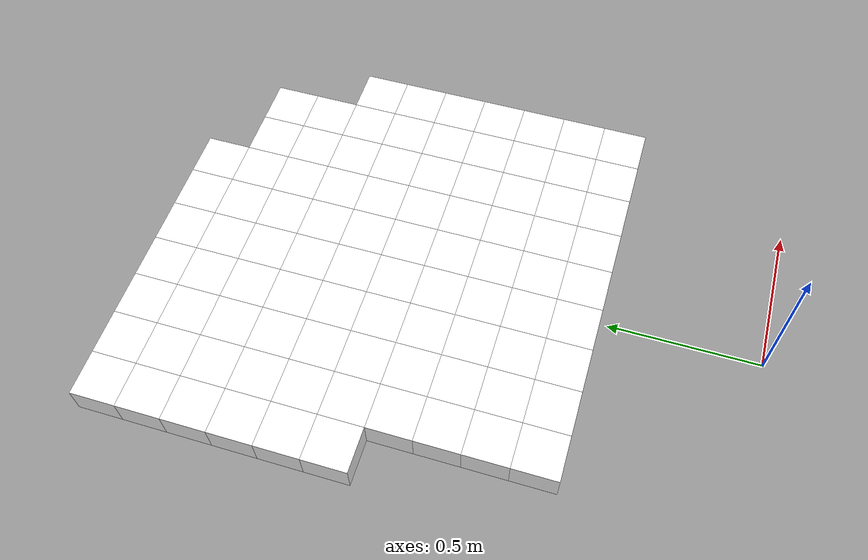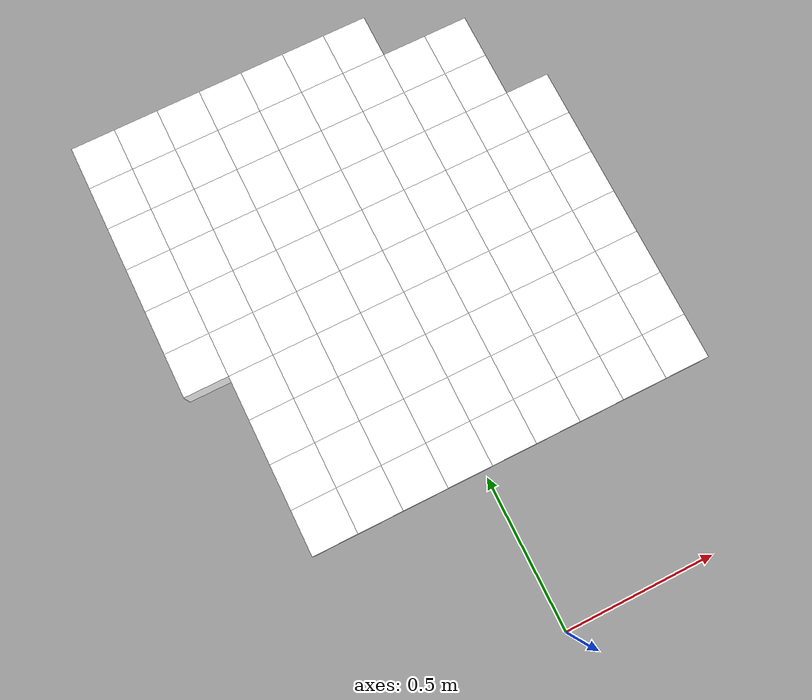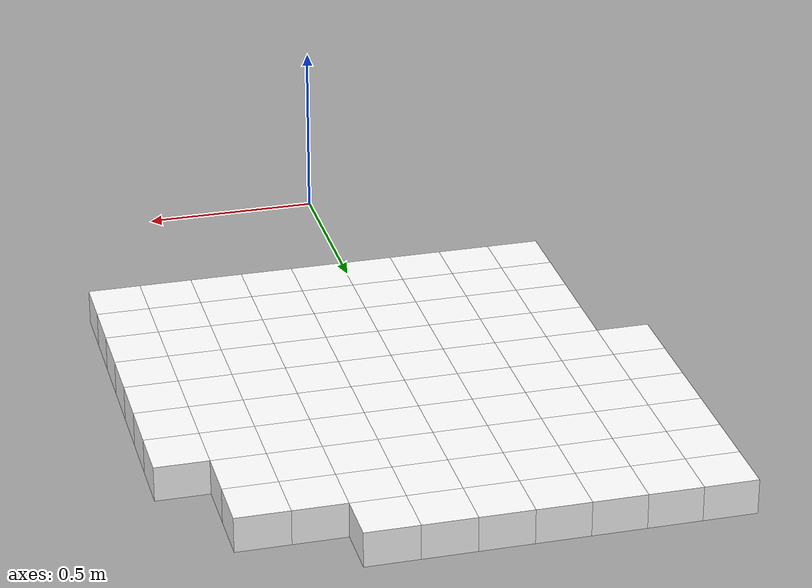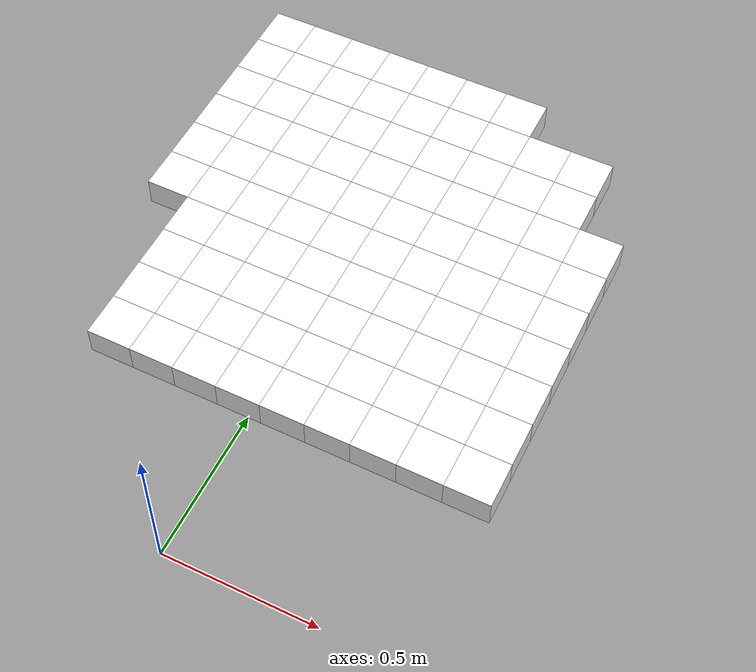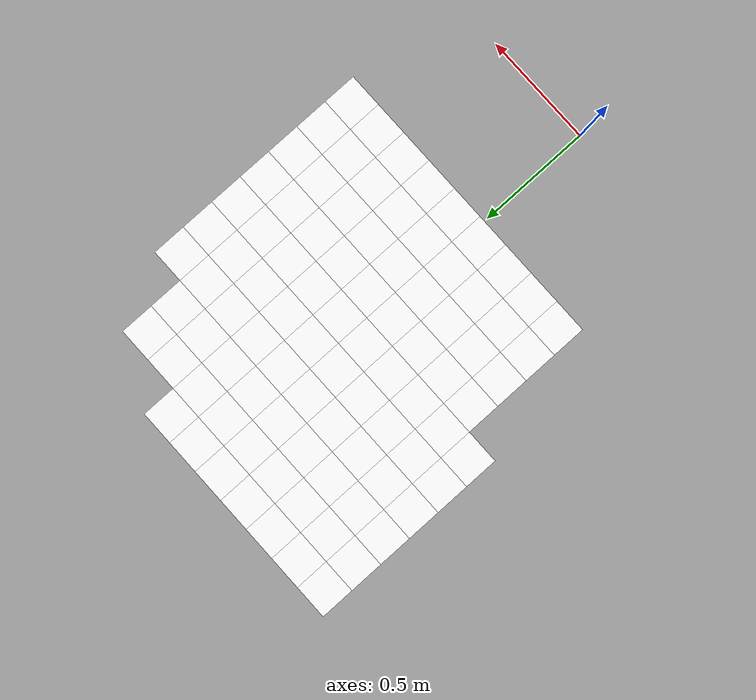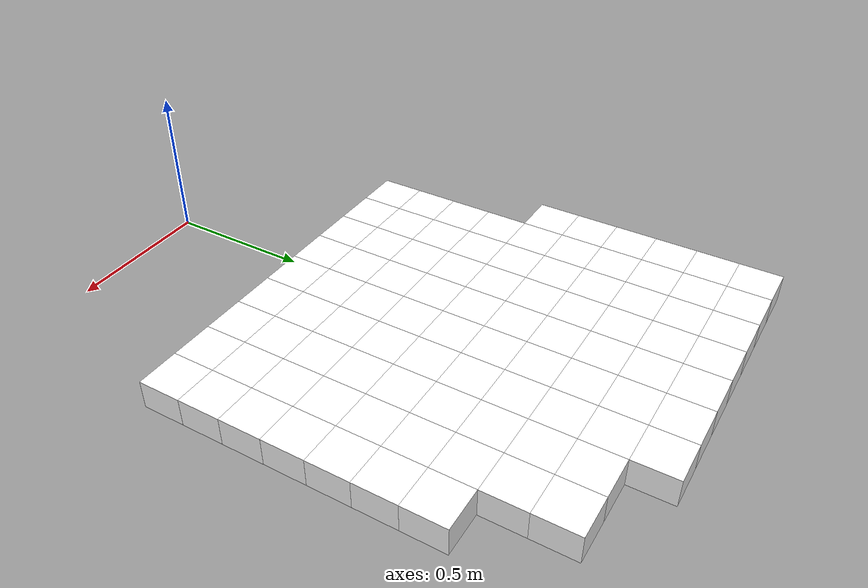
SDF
<sdf version="1.7">
 <world name="default">
  <include><uri>model://sun</uri></include>
  <model name="static_environment">
   <static>true</static>
   <link name="region_10">
    <pose>-0.5000000000000002 0.6 0.0 0.0 0.0 0.0</pose>
    <collision name="region_10_collision">
     <geometry><box><size>0.15 0.15 0.1</size></box></geometry>
     <surface><friction><ode><mu>1.0</mu><mu2>1.0</mu2></ode></friction></surface>
    </collision>
    <visual name="region_10_visual">
     <geometry><box><size>0.15 0.15 0.1</size></box></geometry>
     <material><ambient>1.0 1.0 1.0 1.0</ambient><diffuse>1.0 1.0 1.0 1.0</diffuse></material>
    </visual>
   </link>
   <link name="region_11">
    <pose>-0.3500000000000003 0.6 0.0 0.0 0.0 0.0</pose>
    <collision name="region_11_collision">
     <geometry><box><size>0.15 0.15 0.1</size></box></geometry>
     <surface><friction><ode><mu>1.0</mu><mu2>1.0</mu2></ode></friction></surface>
    </collision>
    <visual name="region_11_visual">
     <geometry><box><size>0.15 0.15 0.1</size></box></geometry>
     <material><ambient>1.0 1.0 1.0 1.0</ambient><diffuse>1.0 1.0 1.0 1.0</diffuse></material>
    </visual>
   </link>
   <link name="region_12">
    <pose>-0.2000000000000004 0.6 0.0 0.0 0.0 0.0</pose>
    <collision name="region_12_collision">
     <geometry><box><size>0.15 0.15 0.1</size></box></geometry>
     <surface><friction><ode><mu>1.0</mu><mu2>1.0</mu2></ode></friction></surface>
    </collision>
    <visual name="region_12_visual">
     <geometry><box><size>0.15 0.15 0.1</size></box></geometry>
     <material><ambient>1.0 1.0 1.0 1.0</ambient><diffuse>1.0 1.0 1.0 1.0</diffuse></material>
    </visual>
   </link>
   <link name="region_13">
    <pose>-0.05000000000000049 0.6 0.0 0.0 0.0 0.0</pose>
    <collision name="region_13_collision">
     <geometry><box><size>0.15 0.15 0.1</size></box></geometry>
     <surface><friction><ode><mu>1.0</mu><mu2>1.0</mu2></ode></friction></surface>
    </collision>
    <visual name="region_13_visual">
     <geometry><box><size>0.15 0.15 0.1</size></box></geometry>
     <material><ambient>1.0 1.0 1.0 1.0</ambient><diffuse>1.0 1.0 1.0 1.0</diffuse></material>
    </visual>
   </link>
   <link name="region_14">
    <pose>0.09999999999999964 0.6 0.0 0.0 0.0 0.0</pose>
    <collision name="region_14_collision">
     <geometry><box><size>0.15 0.15 0.1</size></box></geometry>
     <surface><friction><ode><mu>1.0</mu><mu2>1.0</mu2></ode></friction></surface>
    </collision>
    <visual name="region_14_visual">
     <geometry><box><size>0.15 0.15 0.1</size></box></geometry>
     <material><ambient>1.0 1.0 1.0 1.0</ambient><diffuse>1.0 1.0 1.0 1.0</diffuse></material>
    </visual>
   </link>
   <link name="region_15">
    <pose>0.24999999999999956 0.6 0.0 0.0 0.0 0.0</pose>
    <collision name="region_15_collision">
     <geometry><box><size>0.15 0.15 0.1</size></box></geometry>
     <surface><friction><ode><mu>1.0</mu><mu2>1.0</mu2></ode></friction></surface>
    </collision>
    <visual name="region_15_visual">
     <geometry><box><size>0.15 0.15 0.1</size></box></geometry>
     <material><ambient>1.0 1.0 1.0 1.0</ambient><diffuse>1.0 1.0 1.0 1.0</diffuse></material>
    </visual>
   </link>
   <link name="region_16">
    <pose>0.39999999999999947 0.6 0.0 0.0 0.0 0.0</pose>
    <collision name="region_16_collision">
     <geometry><box><size>0.15 0.15 0.1</size></box></geometry>
     <surface><friction><ode><mu>1.0</mu><mu2>1.0</mu2></ode></friction></surface>
    </collision>
    <visual name="region_16_visual">
     <geometry><box><size>0.15 0.15 0.1</size></box></geometry>
     <material><ambient>1.0 1.0 1.0 1.0</ambient><diffuse>1.0 1.0 1.0 1.0</diffuse></material>
    </visual>
   </link>
   <link name="region_17">
    <pose>0.5499999999999994 0.6 0.0 0.0 0.0 0.0</pose>
    <collision name="region_17_collision">
     <geometry><box><size>0.15 0.15 0.1</size></box></geometry>
     <surface><friction><ode><mu>1.0</mu><mu2>1.0</mu2></ode></friction></surface>
    </collision>
    <visual name="region_17_visual">
     <geometry><box><size>0.15 0.15 0.1</size></box></geometry>
     <material><ambient>1.0 1.0 1.0 1.0</ambient><diffuse>1.0 1.0 1.0 1.0</diffuse></material>
    </visual>
   </link>
   <link name="region_18">
    <pose>0.6999999999999993 0.6 0.0 0.0 0.0 0.0</pose>
    <collision name="region_18_collision">
     <geometry><box><size>0.15 0.15 0.1</size></box></geometry>
     <surface><friction><ode><mu>1.0</mu><mu2>1.0</mu2></ode></friction></surface>
    </collision>
    <visual name="region_18_visual">
     <geometry><box><size>0.15 0.15 0.1</size></box></geometry>
     <material><ambient>1.0 1.0 1.0 1.0</ambient><diffuse>1.0 1.0 1.0 1.0</diffuse></material>
    </visual>
   </link>
   <link name="region_30">
    <pose>-0.5000000000000002 0.75 0.0 0.0 0.0 0.0</pose>
    <collision name="region_30_collision">
     <geometry><box><size>0.15 0.15 0.1</size></box></geometry>
     <surface><friction><ode><mu>1.0</mu><mu2>1.0</mu2></ode></friction></surface>
    </collision>
    <visual name="region_30_visual">
     <geometry><box><size>0.15 0.15 0.1</size></box></geometry>
     <material><ambient>1.0 1.0 1.0 1.0</ambient><diffuse>1.0 1.0 1.0 1.0</diffuse></material>
    </visual>
   </link>
   <link name="region_31">
    <pose>-0.3500000000000003 0.75 0.0 0.0 0.0 0.0</pose>
    <collision name="region_31_collision">
     <geometry><box><size>0.15 0.15 0.1</size></box></geometry>
     <surface><friction><ode><mu>1.0</mu><mu2>1.0</mu2></ode></friction></surface>
    </collision>
    <visual name="region_31_visual">
     <geometry><box><size>0.15 0.15 0.1</size></box></geometry>
     <material><ambient>1.0 1.0 1.0 1.0</ambient><diffuse>1.0 1.0 1.0 1.0</diffuse></material>
    </visual>
   </link>
   <link name="region_32">
    <pose>-0.2000000000000004 0.75 0.0 0.0 0.0 0.0</pose>
    <collision name="region_32_collision">
     <geometry><box><size>0.15 0.15 0.1</size></box></geometry>
     <surface><friction><ode><mu>1.0</mu><mu2>1.0</mu2></ode></friction></surface>
    </collision>
    <visual name="region_32_visual">
     <geometry><box><size>0.15 0.15 0.1</size></box></geometry>
     <material><ambient>1.0 1.0 1.0 1.0</ambient><diffuse>1.0 1.0 1.0 1.0</diffuse></material>
    </visual>
   </link>
   <link name="region_33">
    <pose>-0.05000000000000049 0.75 0.0 0.0 0.0 0.0</pose>
    <collision name="region_33_collision">
     <geometry><box><size>0.15 0.15 0.1</size></box></geometry>
     <surface><friction><ode><mu>1.0</mu><mu2>1.0</mu2></ode></friction></surface>
    </collision>
    <visual name="region_33_visual">
     <geometry><box><size>0.15 0.15 0.1</size></box></geometry>
     <material><ambient>1.0 1.0 1.0 1.0</ambient><diffuse>1.0 1.0 1.0 1.0</diffuse></material>
    </visual>
   </link>
   <link name="region_34">
    <pose>0.09999999999999964 0.75 0.0 0.0 0.0 0.0</pose>
    <collision name="region_34_collision">
     <geometry><box><size>0.15 0.15 0.1</size></box></geometry>
     <surface><friction><ode><mu>1.0</mu><mu2>1.0</mu2></ode></friction></surface>
    </collision>
    <visual name="region_34_visual">
     <geometry><box><size>0.15 0.15 0.1</size></box></geometry>
     <material><ambient>1.0 1.0 1.0 1.0</ambient><diffuse>1.0 1.0 1.0 1.0</diffuse></material>
    </visual>
   </link>
   <link name="region_35">
    <pose>0.24999999999999956 0.75 0.0 0.0 0.0 0.0</pose>
    <collision name="region_35_collision">
     <geometry><box><size>0.15 0.15 0.1</size></box></geometry>
     <surface><friction><ode><mu>1.0</mu><mu2>1.0</mu2></ode></friction></surface>
    </collision>
    <visual name="region_35_visual">
     <geometry><box><size>0.15 0.15 0.1</size></box></geometry>
     <material><ambient>1.0 1.0 1.0 1.0</ambient><diffuse>1.0 1.0 1.0 1.0</diffuse></material>
    </visual>
   </link>
   <link name="region_36">
    <pose>0.39999999999999947 0.75 0.0 0.0 0.0 0.0</pose>
    <collision name="region_36_collision">
     <geometry><box><size>0.15 0.15 0.1</size></box></geometry>
     <surface><friction><ode><mu>1.0</mu><mu2>1.0</mu2></ode></friction></surface>
    </collision>
    <visual name="region_36_visual">
     <geometry><box><size>0.15 0.15 0.1</size></box></geometry>
     <material><ambient>1.0 1.0 1.0 1.0</ambient><diffuse>1.0 1.0 1.0 1.0</diffuse></material>
    </visual>
   </link>
   <link name="region_37">
    <pose>0.5499999999999994 0.75 0.0 0.0 0.0 0.0</pose>
    <collision name="region_37_collision">
     <geometry><box><size>0.15 0.15 0.1</size></box></geometry>
     <surface><friction><ode><mu>1.0</mu><mu2>1.0</mu2></ode></friction></surface>
    </collision>
    <visual name="region_37_visual">
     <geometry><box><size>0.15 0.15 0.1</size></box></geometry>
     <material><ambient>1.0 1.0 1.0 1.0</ambient><diffuse>1.0 1.0 1.0 1.0</diffuse></material>
    </visual>
   </link>
   <link name="region_38">
    <pose>0.6999999999999993 0.75 0.0 0.0 0.0 0.0</pose>
    <collision name="region_38_collision">
     <geometry><box><size>0.15 0.15 0.1</size></box></geometry>
     <surface><friction><ode><mu>1.0</mu><mu2>1.0</mu2></ode></friction></surface>
    </collision>
    <visual name="region_38_visual">
     <geometry><box><size>0.15 0.15 0.1</size></box></geometry>
     <material><ambient>1.0 1.0 1.0 1.0</ambient><diffuse>1.0 1.0 1.0 1.0</diffuse></material>
    </visual>
   </link>
   <link name="region_50">
    <pose>-0.5000000000000002 0.8999999999999999 0.0 0.0 0.0 0.0</pose>
    <collision name="region_50_collision">
     <geometry><box><size>0.15 0.15 0.1</size></box></geometry>
     <surface><friction><ode><mu>1.0</mu><mu2>1.0</mu2></ode></friction></surface>
    </collision>
    <visual name="region_50_visual">
     <geometry><box><size>0.15 0.15 0.1</size></box></geometry>
     <material><ambient>1.0 1.0 1.0 1.0</ambient><diffuse>1.0 1.0 1.0 1.0</diffuse></material>
    </visual>
   </link>
   <link name="region_51">
    <pose>-0.3500000000000003 0.8999999999999999 0.0 0.0 0.0 0.0</pose>
    <collision name="region_51_collision">
     <geometry><box><size>0.15 0.15 0.1</size></box></geometry>
     <surface><friction><ode><mu>1.0</mu><mu2>1.0</mu2></ode></friction></surface>
    </collision>
    <visual name="region_51_visual">
     <geometry><box><size>0.15 0.15 0.1</size></box></geometry>
     <material><ambient>1.0 1.0 1.0 1.0</ambient><diffuse>1.0 1.0 1.0 1.0</diffuse></material>
    </visual>
   </link>
   <link name="region_52">
    <pose>-0.2000000000000004 0.8999999999999999 0.0 0.0 0.0 0.0</pose>
    <collision name="region_52_collision">
     <geometry><box><size>0.15 0.15 0.1</size></box></geometry>
     <surface><friction><ode><mu>1.0</mu><mu2>1.0</mu2></ode></friction></surface>
    </collision>
    <visual name="region_52_visual">
     <geometry><box><size>0.15 0.15 0.1</size></box></geometry>
     <material><ambient>1.0 1.0 1.0 1.0</ambient><diffuse>1.0 1.0 1.0 1.0</diffuse></material>
    </visual>
   </link>
   <link name="region_53">
    <pose>-0.05000000000000049 0.8999999999999999 0.0 0.0 0.0 0.0</pose>
    <collision name="region_53_collision">
     <geometry><box><size>0.15 0.15 0.1</size></box></geometry>
     <surface><friction><ode><mu>1.0</mu><mu2>1.0</mu2></ode></friction></surface>
    </collision>
    <visual name="region_53_visual">
     <geometry><box><size>0.15 0.15 0.1</size></box></geometry>
     <material><ambient>1.0 1.0 1.0 1.0</ambient><diffuse>1.0 1.0 1.0 1.0</diffuse></material>
    </visual>
   </link>
   <link name="region_54">
    <pose>0.09999999999999964 0.8999999999999999 0.0 0.0 0.0 0.0</pose>
    <collision name="region_54_collision">
     <geometry><box><size>0.15 0.15 0.1</size></box></geometry>
     <surface><friction><ode><mu>1.0</mu><mu2>1.0</mu2></ode></friction></surface>
    </collision>
    <visual name="region_54_visual">
     <geometry><box><size>0.15 0.15 0.1</size></box></geometry>
     <material><ambient>1.0 1.0 1.0 1.0</ambient><diffuse>1.0 1.0 1.0 1.0</diffuse></material>
    </visual>
   </link>
   <link name="region_55">
    <pose>0.24999999999999956 0.8999999999999999 0.0 0.0 0.0 0.0</pose>
    <collision name="region_55_collision">
     <geometry><box><size>0.15 0.15 0.1</size></box></geometry>
     <surface><friction><ode><mu>1.0</mu><mu2>1.0</mu2></ode></friction></surface>
    </collision>
    <visual name="region_55_visual">
     <geometry><box><size>0.15 0.15 0.1</size></box></geometry>
     <material><ambient>1.0 1.0 1.0 1.0</ambient><diffuse>1.0 1.0 1.0 1.0</diffuse></material>
    </visual>
   </link>
   <link name="region_56">
    <pose>0.39999999999999947 0.8999999999999999 0.0 0.0 0.0 0.0</pose>
    <collision name="region_56_collision">
     <geometry><box><size>0.15 0.15 0.1</size></box></geometry>
     <surface><friction><ode><mu>1.0</mu><mu2>1.0</mu2></ode></friction></surface>
    </collision>
    <visual name="region_56_visual">
     <geometry><box><size>0.15 0.15 0.1</size></box></geometry>
     <material><ambient>1.0 1.0 1.0 1.0</ambient><diffuse>1.0 1.0 1.0 1.0</diffuse></material>
    </visual>
   </link>
   <link name="region_57">
    <pose>0.5499999999999994 0.8999999999999999 0.0 0.0 0.0 0.0</pose>
    <collision name="region_57_collision">
     <geometry><box><size>0.15 0.15 0.1</size></box></geometry>
     <surface><friction><ode><mu>1.0</mu><mu2>1.0</mu2></ode></friction></surface>
    </collision>
    <visual name="region_57_visual">
     <geometry><box><size>0.15 0.15 0.1</size></box></geometry>
     <material><ambient>1.0 1.0 1.0 1.0</ambient><diffuse>1.0 1.0 1.0 1.0</diffuse></material>
    </visual>
   </link>
   <link name="region_58">
    <pose>0.6999999999999993 0.8999999999999999 0.0 0.0 0.0 0.0</pose>
    <collision name="region_58_collision">
     <geometry><box><size>0.15 0.15 0.1</size></box></geometry>
     <surface><friction><ode><mu>1.0</mu><mu2>1.0</mu2></ode></friction></surface>
    </collision>
    <visual name="region_58_visual">
     <geometry><box><size>0.15 0.15 0.1</size></box></geometry>
     <material><ambient>1.0 1.0 1.0 1.0</ambient><diffuse>1.0 1.0 1.0 1.0</diffuse></material>
    </visual>
   </link>
   <link name="region_70">
    <pose>-0.5000000000000002 1.0499999999999998 0.0 0.0 0.0 0.0</pose>
    <collision name="region_70_collision">
     <geometry><box><size>0.15 0.15 0.1</size></box></geometry>
     <surface><friction><ode><mu>1.0</mu><mu2>1.0</mu2></ode></friction></surface>
    </collision>
    <visual name="region_70_visual">
     <geometry><box><size>0.15 0.15 0.1</size></box></geometry>
     <material><ambient>1.0 1.0 1.0 1.0</ambient><diffuse>1.0 1.0 1.0 1.0</diffuse></material>
    </visual>
   </link>
   <link name="region_71">
    <pose>-0.3500000000000003 1.0499999999999998 0.0 0.0 0.0 0.0</pose>
    <collision name="region_71_collision">
     <geometry><box><size>0.15 0.15 0.1</size></box></geometry>
     <surface><friction><ode><mu>1.0</mu><mu2>1.0</mu2></ode></friction></surface>
    </collision>
    <visual name="region_71_visual">
     <geometry><box><size>0.15 0.15 0.1</size></box></geometry>
     <material><ambient>1.0 1.0 1.0 1.0</ambient><diffuse>1.0 1.0 1.0 1.0</diffuse></material>
    </visual>
   </link>
   <link name="region_72">
    <pose>-0.2000000000000004 1.0499999999999998 0.0 0.0 0.0 0.0</pose>
    <collision name="region_72_collision">
     <geometry><box><size>0.15 0.15 0.1</size></box></geometry>
     <surface><friction><ode><mu>1.0</mu><mu2>1.0</mu2></ode></friction></surface>
    </collision>
    <visual name="region_72_visual">
     <geometry><box><size>0.15 0.15 0.1</size></box></geometry>
     <material><ambient>1.0 1.0 1.0 1.0</ambient><diffuse>1.0 1.0 1.0 1.0</diffuse></material>
    </visual>
   </link>
   <link name="region_73">
    <pose>-0.05000000000000049 1.0499999999999998 0.0 0.0 0.0 0.0</pose>
    <collision name="region_73_collision">
     <geometry><box><size>0.15 0.15 0.1</size></box></geometry>
     <surface><friction><ode><mu>1.0</mu><mu2>1.0</mu2></ode></friction></surface>
    </collision>
    <visual name="region_73_visual">
     <geometry><box><size>0.15 0.15 0.1</size></box></geometry>
     <material><ambient>1.0 1.0 1.0 1.0</ambient><diffuse>1.0 1.0 1.0 1.0</diffuse></material>
    </visual>
   </link>
   <link name="region_74">
    <pose>0.09999999999999964 1.0499999999999998 0.0 0.0 0.0 0.0</pose>
    <collision name="region_74_collision">
     <geometry><box><size>0.15 0.15 0.1</size></box></geometry>
     <surface><friction><ode><mu>1.0</mu><mu2>1.0</mu2></ode></friction></surface>
    </collision>
    <visual name="region_74_visual">
     <geometry><box><size>0.15 0.15 0.1</size></box></geometry>
     <material><ambient>1.0 1.0 1.0 1.0</ambient><diffuse>1.0 1.0 1.0 1.0</diffuse></material>
    </visual>
   </link>
   <link name="region_75">
    <pose>0.24999999999999956 1.0499999999999998 0.0 0.0 0.0 0.0</pose>
    <collision name="region_75_collision">
     <geometry><box><size>0.15 0.15 0.1</size></box></geometry>
     <surface><friction><ode><mu>1.0</mu><mu2>1.0</mu2></ode></friction></surface>
    </collision>
    <visual name="region_75_visual">
     <geometry><box><size>0.15 0.15 0.1</size></box></geometry>
     <material><ambient>1.0 1.0 1.0 1.0</ambient><diffuse>1.0 1.0 1.0 1.0</diffuse></material>
    </visual>
   </link>
   <link name="region_76">
    <pose>0.39999999999999947 1.0499999999999998 0.0 0.0 0.0 0.0</pose>
    <collision name="region_76_collision">
     <geometry><box><size>0.15 0.15 0.1</size></box></geometry>
     <surface><friction><ode><mu>1.0</mu><mu2>1.0</mu2></ode></friction></surface>
    </collision>
    <visual name="region_76_visual">
     <geometry><box><size>0.15 0.15 0.1</size></box></geometry>
     <material><ambient>1.0 1.0 1.0 1.0</ambient><diffuse>1.0 1.0 1.0 1.0</diffuse></material>
    </visual>
   </link>
   <link name="region_77">
    <pose>0.5499999999999994 1.0499999999999998 0.0 0.0 0.0 0.0</pose>
    <collision name="region_77_collision">
     <geometry><box><size>0.15 0.15 0.1</size></box></geometry>
     <surface><friction><ode><mu>1.0</mu><mu2>1.0</mu2></ode></friction></surface>
    </collision>
    <visual name="region_77_visual">
     <geometry><box><size>0.15 0.15 0.1</size></box></geometry>
     <material><ambient>1.0 1.0 1.0 1.0</ambient><diffuse>1.0 1.0 1.0 1.0</diffuse></material>
    </visual>
   </link>
   <link name="region_78">
    <pose>0.6999999999999993 1.0499999999999998 0.0 0.0 0.0 0.0</pose>
    <collision name="region_78_collision">
     <geometry><box><size>0.15 0.15 0.1</size></box></geometry>
     <surface><friction><ode><mu>1.0</mu><mu2>1.0</mu2></ode></friction></surface>
    </collision>
    <visual name="region_78_visual">
     <geometry><box><size>0.15 0.15 0.1</size></box></geometry>
     <material><ambient>1.0 1.0 1.0 1.0</ambient><diffuse>1.0 1.0 1.0 1.0</diffuse></material>
    </visual>
   </link>
   <link name="region_89">
    <pose>-0.6500000000000001 1.2 0.0 0.0 0.0 0.0</pose>
    <collision name="region_89_collision">
     <geometry><box><size>0.15 0.15 0.1</size></box></geometry>
     <surface><friction><ode><mu>1.0</mu><mu2>1.0</mu2></ode></friction></surface>
    </collision>
    <visual name="region_89_visual">
     <geometry><box><size>0.15 0.15 0.1</size></box></geometry>
     <material><ambient>1.0 1.0 1.0 1.0</ambient><diffuse>1.0 1.0 1.0 1.0</diffuse></material>
    </visual>
   </link>
   <link name="region_90">
    <pose>-0.5000000000000002 1.2 0.0 0.0 0.0 0.0</pose>
    <collision name="region_90_collision">
     <geometry><box><size>0.15 0.15 0.1</size></box></geometry>
     <surface><friction><ode><mu>1.0</mu><mu2>1.0</mu2></ode></friction></surface>
    </collision>
    <visual name="region_90_visual">
     <geometry><box><size>0.15 0.15 0.1</size></box></geometry>
     <material><ambient>1.0 1.0 1.0 1.0</ambient><diffuse>1.0 1.0 1.0 1.0</diffuse></material>
    </visual>
   </link>
   <link name="region_91">
    <pose>-0.3500000000000003 1.2 0.0 0.0 0.0 0.0</pose>
    <collision name="region_91_collision">
     <geometry><box><size>0.15 0.15 0.1</size></box></geometry>
     <surface><friction><ode><mu>1.0</mu><mu2>1.0</mu2></ode></friction></surface>
    </collision>
    <visual name="region_91_visual">
     <geometry><box><size>0.15 0.15 0.1</size></box></geometry>
     <material><ambient>1.0 1.0 1.0 1.0</ambient><diffuse>1.0 1.0 1.0 1.0</diffuse></material>
    </visual>
   </link>
   <link name="region_92">
    <pose>-0.2000000000000004 1.2 0.0 0.0 0.0 0.0</pose>
    <collision name="region_92_collision">
     <geometry><box><size>0.15 0.15 0.1</size></box></geometry>
     <surface><friction><ode><mu>1.0</mu><mu2>1.0</mu2></ode></friction></surface>
    </collision>
    <visual name="region_92_visual">
     <geometry><box><size>0.15 0.15 0.1</size></box></geometry>
     <material><ambient>1.0 1.0 1.0 1.0</ambient><diffuse>1.0 1.0 1.0 1.0</diffuse></material>
    </visual>
   </link>
   <link name="region_93">
    <pose>-0.05000000000000049 1.2 0.0 0.0 0.0 0.0</pose>
    <collision name="region_93_collision">
     <geometry><box><size>0.15 0.15 0.1</size></box></geometry>
     <surface><friction><ode><mu>1.0</mu><mu2>1.0</mu2></ode></friction></surface>
    </collision>
    <visual name="region_93_visual">
     <geometry><box><size>0.15 0.15 0.1</size></box></geometry>
     <material><ambient>1.0 1.0 1.0 1.0</ambient><diffuse>1.0 1.0 1.0 1.0</diffuse></material>
    </visual>
   </link>
   <link name="region_94">
    <pose>0.09999999999999964 1.2 0.0 0.0 0.0 0.0</pose>
    <collision name="region_94_collision">
     <geometry><box><size>0.15 0.15 0.1</size></box></geometry>
     <surface><friction><ode><mu>1.0</mu><mu2>1.0</mu2></ode></friction></surface>
    </collision>
    <visual name="region_94_visual">
     <geometry><box><size>0.15 0.15 0.1</size></box></geometry>
     <material><ambient>1.0 1.0 1.0 1.0</ambient><diffuse>1.0 1.0 1.0 1.0</diffuse></material>
    </visual>
   </link>
   <link name="region_95">
    <pose>0.24999999999999956 1.2 0.0 0.0 0.0 0.0</pose>
    <collision name="region_95_collision">
     <geometry><box><size>0.15 0.15 0.1</size></box></geometry>
     <surface><friction><ode><mu>1.0</mu><mu2>1.0</mu2></ode></friction></surface>
    </collision>
    <visual name="region_95_visual">
     <geometry><box><size>0.15 0.15 0.1</size></box></geometry>
     <material><ambient>1.0 1.0 1.0 1.0</ambient><diffuse>1.0 1.0 1.0 1.0</diffuse></material>
    </visual>
   </link>
   <link name="region_96">
    <pose>0.39999999999999947 1.2 0.0 0.0 0.0 0.0</pose>
    <collision name="region_96_collision">
     <geometry><box><size>0.15 0.15 0.1</size></box></geometry>
     <surface><friction><ode><mu>1.0</mu><mu2>1.0</mu2></ode></friction></surface>
    </collision>
    <visual name="region_96_visual">
     <geometry><box><size>0.15 0.15 0.1</size></box></geometry>
     <material><ambient>1.0 1.0 1.0 1.0</ambient><diffuse>1.0 1.0 1.0 1.0</diffuse></material>
    </visual>
   </link>
   <link name="region_97">
    <pose>0.5499999999999994 1.2 0.0 0.0 0.0 0.0</pose>
    <collision name="region_97_collision">
     <geometry><box><size>0.15 0.15 0.1</size></box></geometry>
     <surface><friction><ode><mu>1.0</mu><mu2>1.0</mu2></ode></friction></surface>
    </collision>
    <visual name="region_97_visual">
     <geometry><box><size>0.15 0.15 0.1</size></box></geometry>
     <material><ambient>1.0 1.0 1.0 1.0</ambient><diffuse>1.0 1.0 1.0 1.0</diffuse></material>
    </visual>
   </link>
   <link name="region_98">
    <pose>0.6999999999999993 1.2 0.0 0.0 0.0 0.0</pose>
    <collision name="region_98_collision">
     <geometry><box><size>0.15 0.15 0.1</size></box></geometry>
     <surface><friction><ode><mu>1.0</mu><mu2>1.0</mu2></ode></friction></surface>
    </collision>
    <visual name="region_98_visual">
     <geometry><box><size>0.15 0.15 0.1</size></box></geometry>
     <material><ambient>1.0 1.0 1.0 1.0</ambient><diffuse>1.0 1.0 1.0 1.0</diffuse></material>
    </visual>
   </link>
   <link name="region_109">
    <pose>-0.6500000000000001 1.35 0.0 0.0 0.0 0.0</pose>
    <collision name="region_109_collision">
     <geometry><box><size>0.15 0.15 0.1</size></box></geometry>
     <surface><friction><ode><mu>1.0</mu><mu2>1.0</mu2></ode></friction></surface>
    </collision>
    <visual name="region_109_visual">
     <geometry><box><size>0.15 0.15 0.1</size></box></geometry>
     <material><ambient>1.0 1.0 1.0 1.0</ambient><diffuse>1.0 1.0 1.0 1.0</diffuse></material>
    </visual>
   </link>
   <link name="region_110">
    <pose>-0.5000000000000002 1.35 0.0 0.0 0.0 0.0</pose>
    <collision name="region_110_collision">
     <geometry><box><size>0.15 0.15 0.1</size></box></geometry>
     <surface><friction><ode><mu>1.0</mu><mu2>1.0</mu2></ode></friction></surface>
    </collision>
    <visual name="region_110_visual">
     <geometry><box><size>0.15 0.15 0.1</size></box></geometry>
     <material><ambient>1.0 1.0 1.0 1.0</ambient><diffuse>1.0 1.0 1.0 1.0</diffuse></material>
    </visual>
   </link>
   <link name="region_111">
    <pose>-0.3500000000000003 1.35 0.0 0.0 0.0 0.0</pose>
    <collision name="region_111_collision">
     <geometry><box><size>0.15 0.15 0.1</size></box></geometry>
     <surface><friction><ode><mu>1.0</mu><mu2>1.0</mu2></ode></friction></surface>
    </collision>
    <visual name="region_111_visual">
     <geometry><box><size>0.15 0.15 0.1</size></box></geometry>
     <material><ambient>1.0 1.0 1.0 1.0</ambient><diffuse>1.0 1.0 1.0 1.0</diffuse></material>
    </visual>
   </link>
   <link name="region_112">
    <pose>-0.2000000000000004 1.35 0.0 0.0 0.0 0.0</pose>
    <collision name="region_112_collision">
     <geometry><box><size>0.15 0.15 0.1</size></box></geometry>
     <surface><friction><ode><mu>1.0</mu><mu2>1.0</mu2></ode></friction></surface>
    </collision>
    <visual name="region_112_visual">
     <geometry><box><size>0.15 0.15 0.1</size></box></geometry>
     <material><ambient>1.0 1.0 1.0 1.0</ambient><diffuse>1.0 1.0 1.0 1.0</diffuse></material>
    </visual>
   </link>
   <link name="region_113">
    <pose>-0.05000000000000049 1.35 0.0 0.0 0.0 0.0</pose>
    <collision name="region_113_collision">
     <geometry><box><size>0.15 0.15 0.1</size></box></geometry>
     <surface><friction><ode><mu>1.0</mu><mu2>1.0</mu2></ode></friction></surface>
    </collision>
    <visual name="region_113_visual">
     <geometry><box><size>0.15 0.15 0.1</size></box></geometry>
     <material><ambient>1.0 1.0 1.0 1.0</ambient><diffuse>1.0 1.0 1.0 1.0</diffuse></material>
    </visual>
   </link>
   <link name="region_114">
    <pose>0.09999999999999964 1.35 0.0 0.0 0.0 0.0</pose>
    <collision name="region_114_collision">
     <geometry><box><size>0.15 0.15 0.1</size></box></geometry>
     <surface><friction><ode><mu>1.0</mu><mu2>1.0</mu2></ode></friction></surface>
    </collision>
    <visual name="region_114_visual">
     <geometry><box><size>0.15 0.15 0.1</size></box></geometry>
     <material><ambient>1.0 1.0 1.0 1.0</ambient><diffuse>1.0 1.0 1.0 1.0</diffuse></material>
    </visual>
   </link>
   <link name="region_115">
    <pose>0.24999999999999956 1.35 0.0 0.0 0.0 0.0</pose>
    <collision name="region_115_collision">
     <geometry><box><size>0.15 0.15 0.1</size></box></geometry>
     <surface><friction><ode><mu>1.0</mu><mu2>1.0</mu2></ode></friction></surface>
    </collision>
    <visual name="region_115_visual">
     <geometry><box><size>0.15 0.15 0.1</size></box></geometry>
     <material><ambient>1.0 1.0 1.0 1.0</ambient><diffuse>1.0 1.0 1.0 1.0</diffuse></material>
    </visual>
   </link>
   <link name="region_116">
    <pose>0.39999999999999947 1.35 0.0 0.0 0.0 0.0</pose>
    <collision name="region_116_collision">
     <geometry><box><size>0.15 0.15 0.1</size></box></geometry>
     <surface><friction><ode><mu>1.0</mu><mu2>1.0</mu2></ode></friction></surface>
    </collision>
    <visual name="region_116_visual">
     <geometry><box><size>0.15 0.15 0.1</size></box></geometry>
     <material><ambient>1.0 1.0 1.0 1.0</ambient><diffuse>1.0 1.0 1.0 1.0</diffuse></material>
    </visual>
   </link>
   <link name="region_117">
    <pose>0.5499999999999994 1.35 0.0 0.0 0.0 0.0</pose>
    <collision name="region_117_collision">
     <geometry><box><size>0.15 0.15 0.1</size></box></geometry>
     <surface><friction><ode><mu>1.0</mu><mu2>1.0</mu2></ode></friction></surface>
    </collision>
    <visual name="region_117_visual">
     <geometry><box><size>0.15 0.15 0.1</size></box></geometry>
     <material><ambient>1.0 1.0 1.0 1.0</ambient><diffuse>1.0 1.0 1.0 1.0</diffuse></material>
    </visual>
   </link>
   <link name="region_118">
    <pose>0.6999999999999993 1.35 0.0 0.0 0.0 0.0</pose>
    <collision name="region_118_collision">
     <geometry><box><size>0.15 0.15 0.1</size></box></geometry>
     <surface><friction><ode><mu>1.0</mu><mu2>1.0</mu2></ode></friction></surface>
    </collision>
    <visual name="region_118_visual">
     <geometry><box><size>0.15 0.15 0.1</size></box></geometry>
     <material><ambient>1.0 1.0 1.0 1.0</ambient><diffuse>1.0 1.0 1.0 1.0</diffuse></material>
    </visual>
   </link>
   <link name="region_129">
    <pose>-0.6500000000000001 1.5 0.0 0.0 0.0 0.0</pose>
    <collision name="region_129_collision">
     <geometry><box><size>0.15 0.15 0.1</size></box></geometry>
     <surface><friction><ode><mu>1.0</mu><mu2>1.0</mu2></ode></friction></surface>
    </collision>
    <visual name="region_129_visual">
     <geometry><box><size>0.15 0.15 0.1</size></box></geometry>
     <material><ambient>1.0 1.0 1.0 1.0</ambient><diffuse>1.0 1.0 1.0 1.0</diffuse></material>
    </visual>
   </link>
   <link name="region_130">
    <pose>-0.5000000000000002 1.5 0.0 0.0 0.0 0.0</pose>
    <collision name="region_130_collision">
     <geometry><box><size>0.15 0.15 0.1</size></box></geometry>
     <surface><friction><ode><mu>1.0</mu><mu2>1.0</mu2></ode></friction></surface>
    </collision>
    <visual name="region_130_visual">
     <geometry><box><size>0.15 0.15 0.1</size></box></geometry>
     <material><ambient>1.0 1.0 1.0 1.0</ambient><diffuse>1.0 1.0 1.0 1.0</diffuse></material>
    </visual>
   </link>
   <link name="region_131">
    <pose>-0.3500000000000003 1.5 0.0 0.0 0.0 0.0</pose>
    <collision name="region_131_collision">
     <geometry><box><size>0.15 0.15 0.1</size></box></geometry>
     <surface><friction><ode><mu>1.0</mu><mu2>1.0</mu2></ode></friction></surface>
    </collision>
    <visual name="region_131_visual">
     <geometry><box><size>0.15 0.15 0.1</size></box></geometry>
     <material><ambient>1.0 1.0 1.0 1.0</ambient><diffuse>1.0 1.0 1.0 1.0</diffuse></material>
    </visual>
   </link>
   <link name="region_132">
    <pose>-0.2000000000000004 1.5 0.0 0.0 0.0 0.0</pose>
    <collision name="region_132_collision">
     <geometry><box><size>0.15 0.15 0.1</size></box></geometry>
     <surface><friction><ode><mu>1.0</mu><mu2>1.0</mu2></ode></friction></surface>
    </collision>
    <visual name="region_132_visual">
     <geometry><box><size>0.15 0.15 0.1</size></box></geometry>
     <material><ambient>1.0 1.0 1.0 1.0</ambient><diffuse>1.0 1.0 1.0 1.0</diffuse></material>
    </visual>
   </link>
   <link name="region_133">
    <pose>-0.05000000000000049 1.5 0.0 0.0 0.0 0.0</pose>
    <collision name="region_133_collision">
     <geometry><box><size>0.15 0.15 0.1</size></box></geometry>
     <surface><friction><ode><mu>1.0</mu><mu2>1.0</mu2></ode></friction></surface>
    </collision>
    <visual name="region_133_visual">
     <geometry><box><size>0.15 0.15 0.1</size></box></geometry>
     <material><ambient>1.0 1.0 1.0 1.0</ambient><diffuse>1.0 1.0 1.0 1.0</diffuse></material>
    </visual>
   </link>
   <link name="region_134">
    <pose>0.09999999999999964 1.5 0.0 0.0 0.0 0.0</pose>
    <collision name="region_134_collision">
     <geometry><box><size>0.15 0.15 0.1</size></box></geometry>
     <surface><friction><ode><mu>1.0</mu><mu2>1.0</mu2></ode></friction></surface>
    </collision>
    <visual name="region_134_visual">
     <geometry><box><size>0.15 0.15 0.1</size></box></geometry>
     <material><ambient>1.0 1.0 1.0 1.0</ambient><diffuse>1.0 1.0 1.0 1.0</diffuse></material>
    </visual>
   </link>
   <link name="region_135">
    <pose>0.24999999999999956 1.5 0.0 0.0 0.0 0.0</pose>
    <collision name="region_135_collision">
     <geometry><box><size>0.15 0.15 0.1</size></box></geometry>
     <surface><friction><ode><mu>1.0</mu><mu2>1.0</mu2></ode></friction></surface>
    </collision>
    <visual name="region_135_visual">
     <geometry><box><size>0.15 0.15 0.1</size></box></geometry>
     <material><ambient>1.0 1.0 1.0 1.0</ambient><diffuse>1.0 1.0 1.0 1.0</diffuse></material>
    </visual>
   </link>
   <link name="region_136">
    <pose>0.39999999999999947 1.5 0.0 0.0 0.0 0.0</pose>
    <collision name="region_136_collision">
     <geometry><box><size>0.15 0.15 0.1</size></box></geometry>
     <surface><friction><ode><mu>1.0</mu><mu2>1.0</mu2></ode></friction></surface>
    </collision>
    <visual name="region_136_visual">
     <geometry><box><size>0.15 0.15 0.1</size></box></geometry>
     <material><ambient>1.0 1.0 1.0 1.0</ambient><diffuse>1.0 1.0 1.0 1.0</diffuse></material>
    </visual>
   </link>
   <link name="region_137">
    <pose>0.5499999999999994 1.5 0.0 0.0 0.0 0.0</pose>
    <collision name="region_137_collision">
     <geometry><box><size>0.15 0.15 0.1</size></box></geometry>
     <surface><friction><ode><mu>1.0</mu><mu2>1.0</mu2></ode></friction></surface>
    </collision>
    <visual name="region_137_visual">
     <geometry><box><size>0.15 0.15 0.1</size></box></geometry>
     <material><ambient>1.0 1.0 1.0 1.0</ambient><diffuse>1.0 1.0 1.0 1.0</diffuse></material>
    </visual>
   </link>
   <link name="region_138">
    <pose>0.6999999999999993 1.5 0.0 0.0 0.0 0.0</pose>
    <collision name="region_138_collision">
     <geometry><box><size>0.15 0.15 0.1</size></box></geometry>
     <surface><friction><ode><mu>1.0</mu><mu2>1.0</mu2></ode></friction></surface>
    </collision>
    <visual name="region_138_visual">
     <geometry><box><size>0.15 0.15 0.1</size></box></geometry>
     <material><ambient>1.0 1.0 1.0 1.0</ambient><diffuse>1.0 1.0 1.0 1.0</diffuse></material>
    </visual>
   </link>
   <link name="region_149">
    <pose>-0.6500000000000001 1.65 0.0 0.0 0.0 0.0</pose>
    <collision name="region_149_collision">
     <geometry><box><size>0.15 0.15 0.1</size></box></geometry>
     <surface><friction><ode><mu>1.0</mu><mu2>1.0</mu2></ode></friction></surface>
    </collision>
    <visual name="region_149_visual">
     <geometry><box><size>0.15 0.15 0.1</size></box></geometry>
     <material><ambient>1.0 1.0 1.0 1.0</ambient><diffuse>1.0 1.0 1.0 1.0</diffuse></material>
    </visual>
   </link>
   <link name="region_150">
    <pose>-0.5000000000000002 1.65 0.0 0.0 0.0 0.0</pose>
    <collision name="region_150_collision">
     <geometry><box><size>0.15 0.15 0.1</size></box></geometry>
     <surface><friction><ode><mu>1.0</mu><mu2>1.0</mu2></ode></friction></surface>
    </collision>
    <visual name="region_150_visual">
     <geometry><box><size>0.15 0.15 0.1</size></box></geometry>
     <material><ambient>1.0 1.0 1.0 1.0</ambient><diffuse>1.0 1.0 1.0 1.0</diffuse></material>
    </visual>
   </link>
   <link name="region_151">
    <pose>-0.3500000000000003 1.65 0.0 0.0 0.0 0.0</pose>
    <collision name="region_151_collision">
     <geometry><box><size>0.15 0.15 0.1</size></box></geometry>
     <surface><friction><ode><mu>1.0</mu><mu2>1.0</mu2></ode></friction></surface>
    </collision>
    <visual name="region_151_visual">
     <geometry><box><size>0.15 0.15 0.1</size></box></geometry>
     <material><ambient>1.0 1.0 1.0 1.0</ambient><diffuse>1.0 1.0 1.0 1.0</diffuse></material>
    </visual>
   </link>
   <link name="region_152">
    <pose>-0.2000000000000004 1.65 0.0 0.0 0.0 0.0</pose>
    <collision name="region_152_collision">
     <geometry><box><size>0.15 0.15 0.1</size></box></geometry>
     <surface><friction><ode><mu>1.0</mu><mu2>1.0</mu2></ode></friction></surface>
    </collision>
    <visual name="region_152_visual">
     <geometry><box><size>0.15 0.15 0.1</size></box></geometry>
     <material><ambient>1.0 1.0 1.0 1.0</ambient><diffuse>1.0 1.0 1.0 1.0</diffuse></material>
    </visual>
   </link>
   <link name="region_153">
    <pose>-0.05000000000000049 1.65 0.0 0.0 0.0 0.0</pose>
    <collision name="region_153_collision">
     <geometry><box><size>0.15 0.15 0.1</size></box></geometry>
     <surface><friction><ode><mu>1.0</mu><mu2>1.0</mu2></ode></friction></surface>
    </collision>
    <visual name="region_153_visual">
     <geometry><box><size>0.15 0.15 0.1</size></box></geometry>
     <material><ambient>1.0 1.0 1.0 1.0</ambient><diffuse>1.0 1.0 1.0 1.0</diffuse></material>
    </visual>
   </link>
   <link name="region_154">
    <pose>0.09999999999999964 1.65 0.0 0.0 0.0 0.0</pose>
    <collision name="region_154_collision">
     <geometry><box><size>0.15 0.15 0.1</size></box></geometry>
     <surface><friction><ode><mu>1.0</mu><mu2>1.0</mu2></ode></friction></surface>
    </collision>
    <visual name="region_154_visual">
     <geometry><box><size>0.15 0.15 0.1</size></box></geometry>
     <material><ambient>1.0 1.0 1.0 1.0</ambient><diffuse>1.0 1.0 1.0 1.0</diffuse></material>
    </visual>
   </link>
   <link name="region_155">
    <pose>0.24999999999999956 1.65 0.0 0.0 0.0 0.0</pose>
    <collision name="region_155_collision">
     <geometry><box><size>0.15 0.15 0.1</size></box></geometry>
     <surface><friction><ode><mu>1.0</mu><mu2>1.0</mu2></ode></friction></surface>
    </collision>
    <visual name="region_155_visual">
     <geometry><box><size>0.15 0.15 0.1</size></box></geometry>
     <material><ambient>1.0 1.0 1.0 1.0</ambient><diffuse>1.0 1.0 1.0 1.0</diffuse></material>
    </visual>
   </link>
   <link name="region_156">
    <pose>0.39999999999999947 1.65 0.0 0.0 0.0 0.0</pose>
    <collision name="region_156_collision">
     <geometry><box><size>0.15 0.15 0.1</size></box></geometry>
     <surface><friction><ode><mu>1.0</mu><mu2>1.0</mu2></ode></friction></surface>
    </collision>
    <visual name="region_156_visual">
     <geometry><box><size>0.15 0.15 0.1</size></box></geometry>
     <material><ambient>1.0 1.0 1.0 1.0</ambient><diffuse>1.0 1.0 1.0 1.0</diffuse></material>
    </visual>
   </link>
   <link name="region_157">
    <pose>0.5499999999999994 1.65 0.0 0.0 0.0 0.0</pose>
    <collision name="region_157_collision">
     <geometry><box><size>0.15 0.15 0.1</size></box></geometry>
     <surface><friction><ode><mu>1.0</mu><mu2>1.0</mu2></ode></friction></surface>
    </collision>
    <visual name="region_157_visual">
     <geometry><box><size>0.15 0.15 0.1</size></box></geometry>
     <material><ambient>1.0 1.0 1.0 1.0</ambient><diffuse>1.0 1.0 1.0 1.0</diffuse></material>
    </visual>
   </link>
   <link name="region_169">
    <pose>-0.6500000000000001 1.7999999999999998 0.0 0.0 0.0 0.0</pose>
    <collision name="region_169_collision">
     <geometry><box><size>0.15 0.15 0.1</size></box></geometry>
     <surface><friction><ode><mu>1.0</mu><mu2>1.0</mu2></ode></friction></surface>
    </collision>
    <visual name="region_169_visual">
     <geometry><box><size>0.15 0.15 0.1</size></box></geometry>
     <material><ambient>1.0 1.0 1.0 1.0</ambient><diffuse>1.0 1.0 1.0 1.0</diffuse></material>
    </visual>
   </link>
   <link name="region_170">
    <pose>-0.5000000000000002 1.7999999999999998 0.0 0.0 0.0 0.0</pose>
    <collision name="region_170_collision">
     <geometry><box><size>0.15 0.15 0.1</size></box></geometry>
     <surface><friction><ode><mu>1.0</mu><mu2>1.0</mu2></ode></friction></surface>
    </collision>
    <visual name="region_170_visual">
     <geometry><box><size>0.15 0.15 0.1</size></box></geometry>
     <material><ambient>1.0 1.0 1.0 1.0</ambient><diffuse>1.0 1.0 1.0 1.0</diffuse></material>
    </visual>
   </link>
   <link name="region_171">
    <pose>-0.3500000000000003 1.7999999999999998 0.0 0.0 0.0 0.0</pose>
    <collision name="region_171_collision">
     <geometry><box><size>0.15 0.15 0.1</size></box></geometry>
     <surface><friction><ode><mu>1.0</mu><mu2>1.0</mu2></ode></friction></surface>
    </collision>
    <visual name="region_171_visual">
     <geometry><box><size>0.15 0.15 0.1</size></box></geometry>
     <material><ambient>1.0 1.0 1.0 1.0</ambient><diffuse>1.0 1.0 1.0 1.0</diffuse></material>
    </visual>
   </link>
   <link name="region_172">
    <pose>-0.2000000000000004 1.7999999999999998 0.0 0.0 0.0 0.0</pose>
    <collision name="region_172_collision">
     <geometry><box><size>0.15 0.15 0.1</size></box></geometry>
     <surface><friction><ode><mu>1.0</mu><mu2>1.0</mu2></ode></friction></surface>
    </collision>
    <visual name="region_172_visual">
     <geometry><box><size>0.15 0.15 0.1</size></box></geometry>
     <material><ambient>1.0 1.0 1.0 1.0</ambient><diffuse>1.0 1.0 1.0 1.0</diffuse></material>
    </visual>
   </link>
   <link name="region_173">
    <pose>-0.05000000000000049 1.7999999999999998 0.0 0.0 0.0 0.0</pose>
    <collision name="region_173_collision">
     <geometry><box><size>0.15 0.15 0.1</size></box></geometry>
     <surface><friction><ode><mu>1.0</mu><mu2>1.0</mu2></ode></friction></surface>
    </collision>
    <visual name="region_173_visual">
     <geometry><box><size>0.15 0.15 0.1</size></box></geometry>
     <material><ambient>1.0 1.0 1.0 1.0</ambient><diffuse>1.0 1.0 1.0 1.0</diffuse></material>
    </visual>
   </link>
   <link name="region_174">
    <pose>0.09999999999999964 1.7999999999999998 0.0 0.0 0.0 0.0</pose>
    <collision name="region_174_collision">
     <geometry><box><size>0.15 0.15 0.1</size></box></geometry>
     <surface><friction><ode><mu>1.0</mu><mu2>1.0</mu2></ode></friction></surface>
    </collision>
    <visual name="region_174_visual">
     <geometry><box><size>0.15 0.15 0.1</size></box></geometry>
     <material><ambient>1.0 1.0 1.0 1.0</ambient><diffuse>1.0 1.0 1.0 1.0</diffuse></material>
    </visual>
   </link>
   <link name="region_175">
    <pose>0.24999999999999956 1.7999999999999998 0.0 0.0 0.0 0.0</pose>
    <collision name="region_175_collision">
     <geometry><box><size>0.15 0.15 0.1</size></box></geometry>
     <surface><friction><ode><mu>1.0</mu><mu2>1.0</mu2></ode></friction></surface>
    </collision>
    <visual name="region_175_visual">
     <geometry><box><size>0.15 0.15 0.1</size></box></geometry>
     <material><ambient>1.0 1.0 1.0 1.0</ambient><diffuse>1.0 1.0 1.0 1.0</diffuse></material>
    </visual>
   </link>
   <link name="region_176">
    <pose>0.39999999999999947 1.7999999999999998 0.0 0.0 0.0 0.0</pose>
    <collision name="region_176_collision">
     <geometry><box><size>0.15 0.15 0.1</size></box></geometry>
     <surface><friction><ode><mu>1.0</mu><mu2>1.0</mu2></ode></friction></surface>
    </collision>
    <visual name="region_176_visual">
     <geometry><box><size>0.15 0.15 0.1</size></box></geometry>
     <material><ambient>1.0 1.0 1.0 1.0</ambient><diffuse>1.0 1.0 1.0 1.0</diffuse></material>
    </visual>
   </link>
   <link name="region_177">
    <pose>0.5499999999999994 1.7999999999999998 0.0 0.0 0.0 0.0</pose>
    <collision name="region_177_collision">
     <geometry><box><size>0.15 0.15 0.1</size></box></geometry>
     <surface><friction><ode><mu>1.0</mu><mu2>1.0</mu2></ode></friction></surface>
    </collision>
    <visual name="region_177_visual">
     <geometry><box><size>0.15 0.15 0.1</size></box></geometry>
     <material><ambient>1.0 1.0 1.0 1.0</ambient><diffuse>1.0 1.0 1.0 1.0</diffuse></material>
    </visual>
   </link>
   <link name="region_189">
    <pose>-0.6500000000000001 1.9499999999999997 0.0 0.0 0.0 0.0</pose>
    <collision name="region_189_collision">
     <geometry><box><size>0.15 0.15 0.1</size></box></geometry>
     <surface><friction><ode><mu>1.0</mu><mu2>1.0</mu2></ode></friction></surface>
    </collision>
    <visual name="region_189_visual">
     <geometry><box><size>0.15 0.15 0.1</size></box></geometry>
     <material><ambient>1.0 1.0 1.0 1.0</ambient><diffuse>1.0 1.0 1.0 1.0</diffuse></material>
    </visual>
   </link>
   <link name="region_190">
    <pose>-0.5000000000000002 1.9499999999999997 0.0 0.0 0.0 0.0</pose>
    <collision name="region_190_collision">
     <geometry><box><size>0.15 0.15 0.1</size></box></geometry>
     <surface><friction><ode><mu>1.0</mu><mu2>1.0</mu2></ode></friction></surface>
    </collision>
    <visual name="region_190_visual">
     <geometry><box><size>0.15 0.15 0.1</size></box></geometry>
     <material><ambient>1.0 1.0 1.0 1.0</ambient><diffuse>1.0 1.0 1.0 1.0</diffuse></material>
    </visual>
   </link>
   <link name="region_191">
    <pose>-0.3500000000000003 1.9499999999999997 0.0 0.0 0.0 0.0</pose>
    <collision name="region_191_collision">
     <geometry><box><size>0.15 0.15 0.1</size></box></geometry>
     <surface><friction><ode><mu>1.0</mu><mu2>1.0</mu2></ode></friction></surface>
    </collision>
    <visual name="region_191_visual">
     <geometry><box><size>0.15 0.15 0.1</size></box></geometry>
     <material><ambient>1.0 1.0 1.0 1.0</ambient><diffuse>1.0 1.0 1.0 1.0</diffuse></material>
    </visual>
   </link>
   <link name="region_192">
    <pose>-0.2000000000000004 1.9499999999999997 0.0 0.0 0.0 0.0</pose>
    <collision name="region_192_collision">
     <geometry><box><size>0.15 0.15 0.1</size></box></geometry>
     <surface><friction><ode><mu>1.0</mu><mu2>1.0</mu2></ode></friction></surface>
    </collision>
    <visual name="region_192_visual">
     <geometry><box><size>0.15 0.15 0.1</size></box></geometry>
     <material><ambient>1.0 1.0 1.0 1.0</ambient><diffuse>1.0 1.0 1.0 1.0</diffuse></material>
    </visual>
   </link>
   <link name="region_193">
    <pose>-0.05000000000000049 1.9499999999999997 0.0 0.0 0.0 0.0</pose>
    <collision name="region_193_collision">
     <geometry><box><size>0.15 0.15 0.1</size></box></geometry>
     <surface><friction><ode><mu>1.0</mu><mu2>1.0</mu2></ode></friction></surface>
    </collision>
    <visual name="region_193_visual">
     <geometry><box><size>0.15 0.15 0.1</size></box></geometry>
     <material><ambient>1.0 1.0 1.0 1.0</ambient><diffuse>1.0 1.0 1.0 1.0</diffuse></material>
    </visual>
   </link>
   <link name="region_194">
    <pose>0.09999999999999964 1.9499999999999997 0.0 0.0 0.0 0.0</pose>
    <collision name="region_194_collision">
     <geometry><box><size>0.15 0.15 0.1</size></box></geometry>
     <surface><friction><ode><mu>1.0</mu><mu2>1.0</mu2></ode></friction></surface>
    </collision>
    <visual name="region_194_visual">
     <geometry><box><size>0.15 0.15 0.1</size></box></geometry>
     <material><ambient>1.0 1.0 1.0 1.0</ambient><diffuse>1.0 1.0 1.0 1.0</diffuse></material>
    </visual>
   </link>
   <link name="region_195">
    <pose>0.24999999999999956 1.9499999999999997 0.0 0.0 0.0 0.0</pose>
    <collision name="region_195_collision">
     <geometry><box><size>0.15 0.15 0.1</size></box></geometry>
     <surface><friction><ode><mu>1.0</mu><mu2>1.0</mu2></ode></friction></surface>
    </collision>
    <visual name="region_195_visual">
     <geometry><box><size>0.15 0.15 0.1</size></box></geometry>
     <material><ambient>1.0 1.0 1.0 1.0</ambient><diffuse>1.0 1.0 1.0 1.0</diffuse></material>
    </visual>
   </link>
  </model>
 </world>
</sdf>
